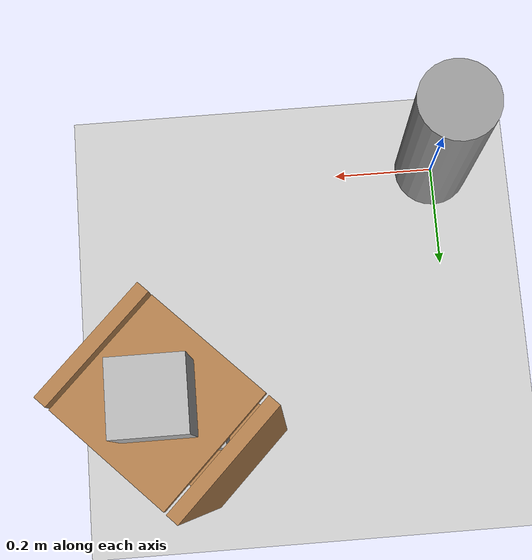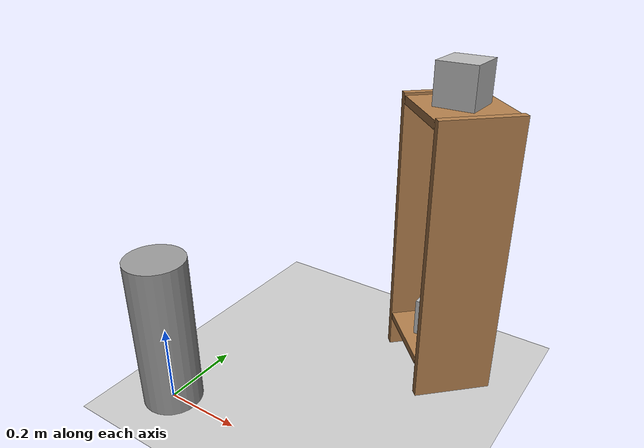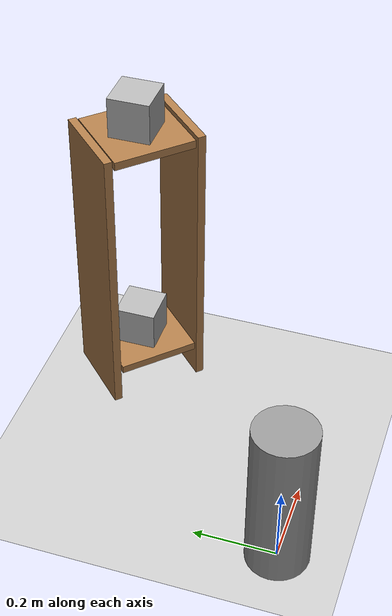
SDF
<sdf version="1.6">
 <world name="default">
  <include><uri>model://ground_plane</uri></include>
  <include><uri>model://sun</uri></include>
  <plugin name="gazebo_tutorials" filename="libhello_world_plugin.so"/>
  <model name="cabinet">
   <pose>0.5 0.5 0 0 0 0.7854</pose>
   <include><uri>model://small_cabinet</uri></include>
  </model>
  <model name="box1">
   <pose>0.5 0.5 0.16 0 0 0</pose>
   <link name="link">
    <inertial>
     <mass>1.0</mass>
     <inertia><ixx>0.02</ixx><ixy>0.0</ixy><ixz>0.0</ixz><iyy>0.02</iyy><iyz>0.0</iyz><izz>0.02</izz></inertia>
    </inertial>
    <collision name="collision"><geometry><box><size>0.1 0.1 0.1</size></box></geometry></collision>
    <visual name="visual"><geometry><box><size>0.1 0.1 0.1</size></box></geometry></visual>
   </link>
  </model>
  <model name="box2">
   <pose>0.5 0.5 0.77 0 0 0</pose>
   <link name="link">
    <inertial>
     <mass>1.0</mass>
     <inertia><ixx>0.02</ixx><ixy>0.0</ixy><ixz>0.0</ixz><iyy>0.02</iyy><iyz>0.0</iyz><izz>0.02</izz></inertia>
    </inertial>
    <collision name="collision"><geometry><box><size>0.1 0.1 0.1</size></box></geometry></collision>
    <visual name="visual"><geometry><box><size>0.1 0.1 0.1</size></box></geometry></visual>
   </link>
  </model>
  <model name="cylinder_base">
   <link name="link">
    <pose>0 0 0.2 0 -0 0</pose>
    <inertial>
     <mass>1</mass>
     <inertia><ixx>0.145833</ixx><ixy>0</ixy><ixz>0</ixz><iyy>0.145833</iyy><iyz>0</iyz><izz>0.125</izz></inertia>
    </inertial>
    <visual name="visual">
     <geometry><cylinder><radius>0.075</radius><length>0.4</length></cylinder></geometry>
     <material>
      <script><name>Gazebo/Grey</name><uri>file://media/materials/scripts/gazebo.material</uri></script>
      <ambient>0.3 0.3 0.3 1</ambient>
      <diffuse>0.7 0.7 0.7 1</diffuse>
      <specular>0.01 0.01 0.01 1</specular>
      <emissive>0 0 0 1</emissive>
     </material>
    </visual>
    <collision name="collision">
     <geometry><cylinder><radius>0.1</radius><length>0.4</length></cylinder></geometry>
    </collision>
   </link>
   <static>1</static>
  </model>
 </world>
</sdf>

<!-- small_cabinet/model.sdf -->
<sdf version="1.5">
  <model name="small_cabinet">
    <static>true</static>
    <link name="cabinet_bottom_plate">
      <inertial>
        <pose>0 0 -1 0 0 0</pose>
        <inertia>
          <ixx>2.050000</ixx>
          <ixy>0</ixy>
          <ixz>0</ixz>
          <iyy>2.050000</iyy>
          <iyz>0</iyz>
          <izz>2.050000</izz>
        </inertia>
        <mass>25.000000</mass>
      </inertial>
      <collision name="cabinet_bottom_plate_geom">
        <pose>0 0 0.10000 0 0 0</pose>
        <geometry>
          <box>
            <size>0.20000 0.20000 0.020000</size>
          </box>
        </geometry>
      </collision>
      <visual name="cabinet_bottom_plate_geom_visual">
        <pose>0 0 0.10000 0 0 0</pose>
        <geometry>
          <box>
            <size>0.20000 0.20000 0.020000</size>
          </box>
        </geometry>
        <material>
          <script>
            <uri>file://media/materials/scripts/gazebo.material</uri>
            <name>Gazebo/Wood</name>
          </script>
        </material>
      </visual>

      <collision name="cabinet_bottom_plate_geom_cabinet_left_plate">
        <pose>0 0.115000 0.365000 0 0 0</pose>
        <geometry>
          <box>
            <size>0.20000 0.020000 0.720000</size>
          </box>
        </geometry>
      </collision>
      <visual name="cabinet_bottom_plate_geom_cabinet_left_plate_visual">
        <pose>0 0.115000 0.365000 0 0 0</pose>
        <geometry>
          <box>
            <size>0.20000 0.020000 0.720000</size>
          </box>
        </geometry>
        <material>
          <script>
            <uri>file://media/materials/scripts/gazebo.material</uri>
            <name>Gazebo/Wood</name>
          </script>
        </material>
      </visual>
      <collision name="cabinet_bottom_plate_geom_cabinet_middle_plate">
        <pose>0 0 0.71000 0 0 0</pose>
        <geometry>
          <box>
            <size>0.20000 0.20000 0.020000</size>
          </box>
        </geometry>
      </collision>
      <visual name="cabinet_bottom_plate_geom_cabinet_middle_plate_visual">
        <pose>0 0 0.710000 0 0 0</pose>
        <geometry>
          <box>
            <size>0.20000 0.20000 0.020000</size>
          </box>
        </geometry>
        <material>
          <script>
            <uri>file://media/materials/scripts/gazebo.material</uri>
            <name>Gazebo/Wood</name>
          </script>
        </material>
      </visual>
      <collision name="cabinet_bottom_plate_geom_cabinet_right_plate">
        <pose>0 -0.115000 0.365000 0 0 0</pose>
        <geometry>
          <box>
            <size>0.20000 0.020000 0.720000</size>
          </box>
        </geometry>
      </collision>
      <visual name="cabinet_bottom_plate_geom_cabinet_right_plate_visual">
        <pose>0 -0.115000 0.365000 0 0 0</pose>
        <geometry>
          <box>
            <size>0.20000 0.020000 0.720000</size>
          </box>
        </geometry>
        <material>
          <script>
            <uri>file://media/materials/scripts/gazebo.material</uri>
            <name>Gazebo/Wood</name>
          </script>
        </material>
      </visual>

    </link>
  </model>
</sdf>
